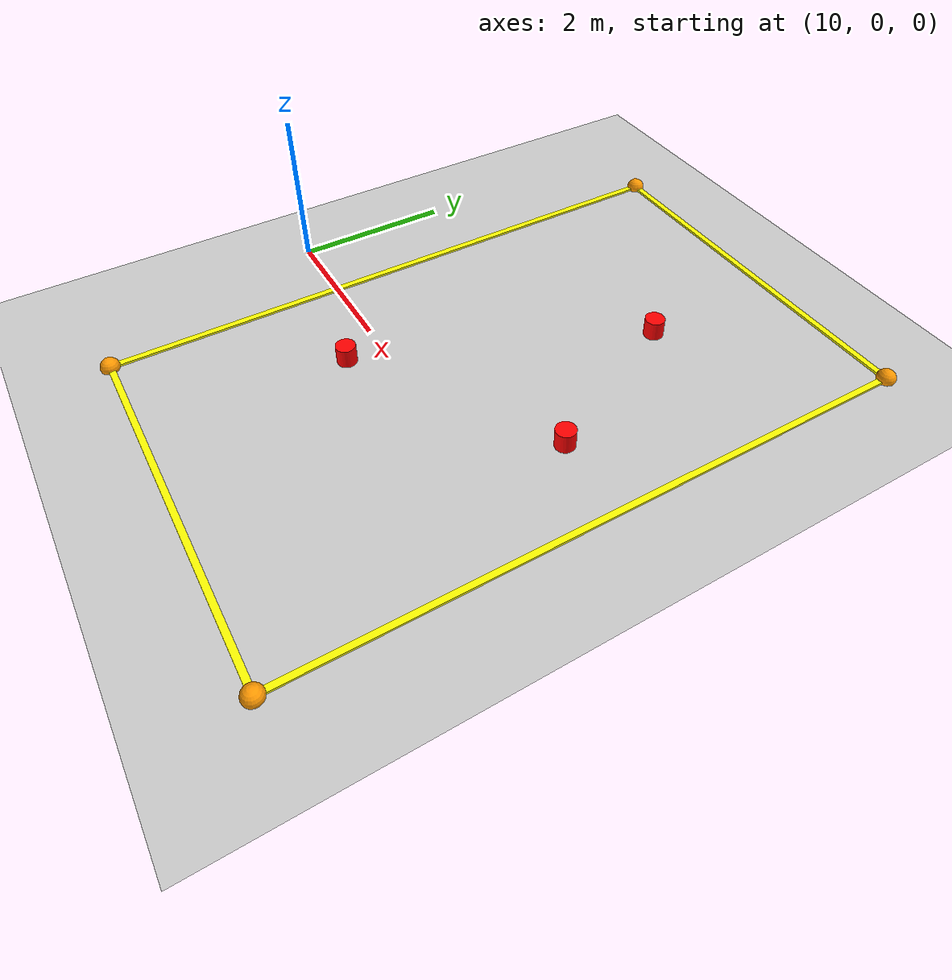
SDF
<?xml version="1.0" ?>
<sdf version="1.6">
  <world name="final">
    <plugin name="gazebo_ros_init" filename="libgazebo_ros_init.so"/>
    <plugin name="gazebo_ros_state" filename="libgazebo_ros_state.so"/>

    <include>
      <uri>model://sun</uri>
    </include>

    <include>
      <uri>model://ground_plane</uri>
    </include>

    <!-- ===== 4条边框 ===== -->
    <!-- 后端框边 (NED y=10, Gazebo x=11.01) — 8m 沿 Gazebo y -->
    <model name="border_back">
      <static>true</static>
      <pose>11.01 0.98 0.015 0 0 0</pose>
      <link name="link">
        <collision name="collision">
          <geometry><box><size>0.08 8.0 0.03</size></box></geometry>
        </collision>
        <visual name="visual">
          <geometry><box><size>0.08 8.0 0.03</size></box></geometry>
          <material>
            <ambient>1 1 0 1</ambient>
            <diffuse>1 1 0 1</diffuse>
          </material>
        </visual>
      </link>
    </model>

    <!-- 前端框边 (NED y=15, Gazebo x=16.01) — 8m 沿 Gazebo y -->
    <model name="border_front">
      <static>true</static>
      <pose>16.01 0.98 0.015 0 0 0</pose>
      <link name="link">
        <collision name="collision">
          <geometry><box><size>0.08 8.0 0.03</size></box></geometry>
        </collision>
        <visual name="visual">
          <geometry><box><size>0.08 8.0 0.03</size></box></geometry>
          <material>
            <ambient>1 1 0 1</ambient>
            <diffuse>1 1 0 1</diffuse>
          </material>
        </visual>
      </link>
    </model>

    <!-- 左框边 (NED x=-4, Gazebo y=-3.02) — 5m 沿 Gazebo x -->
    <model name="border_left">
      <static>true</static>
      <pose>13.51 -3.02 0.015 0 0 0</pose>
      <link name="link">
        <collision name="collision">
          <geometry><box><size>5.0 0.08 0.03</size></box></geometry>
        </collision>
        <visual name="visual">
          <geometry><box><size>5.0 0.08 0.03</size></box></geometry>
          <material>
            <ambient>1 1 0 1</ambient>
            <diffuse>1 1 0 1</diffuse>
          </material>
        </visual>
      </link>
    </model>

    <!-- 右框边 (NED x=+4, Gazebo y=4.98) — 5m 沿 Gazebo x -->
    <model name="border_right">
      <static>true</static>
      <pose>13.51 4.98 0.015 0 0 0</pose>
      <link name="link">
        <collision name="collision">
          <geometry><box><size>5.0 0.08 0.03</size></box></geometry>
        </collision>
        <visual name="visual">
          <geometry><box><size>5.0 0.08 0.03</size></box></geometry>
          <material>
            <ambient>1 1 0 1</ambient>
            <diffuse>1 1 0 1</diffuse>
          </material>
        </visual>
      </link>
    </model>

    <!-- ===== 4个角标 ===== -->
    <model name="corner_bl"><static>true</static><pose>11.01 -3.02 0.02 0 0 0</pose>
      <link name="link">
        <visual name="visual">
          <geometry><sphere><radius>0.12</radius></sphere></geometry>
          <material><ambient>1 0.6 0 1</ambient><diffuse>1 0.6 0 1</diffuse></material>
        </visual>
      </link>
    </model>
    <model name="corner_br"><static>true</static><pose>11.01 4.98 0.02 0 0 0</pose>
      <link name="link">
        <visual name="visual">
          <geometry><sphere><radius>0.12</radius></sphere></geometry>
          <material><ambient>1 0.6 0 1</ambient><diffuse>1 0.6 0 1</diffuse></material>
        </visual>
      </link>
    </model>
    <model name="corner_fl"><static>true</static><pose>16.01 -3.02 0.02 0 0 0</pose>
      <link name="link">
        <visual name="visual">
          <geometry><sphere><radius>0.12</radius></sphere></geometry>
          <material><ambient>1 0.6 0 1</ambient><diffuse>1 0.6 0 1</diffuse></material>
        </visual>
      </link>
    </model>
    <model name="corner_fr"><static>true</static><pose>16.01 4.98 0.02 0 0 0</pose>
      <link name="link">
        <visual name="visual">
          <geometry><sphere><radius>0.12</radius></sphere></geometry>
          <material><ambient>1 0.6 0 1</ambient><diffuse>1 0.6 0 1</diffuse></material>
        </visual>
      </link>
    </model>

    <model name="target_bucket_1">
      <pose>12.51 -0.52 0.25 0 0 0</pose>
      <link name="bucket_link">
        <inertial>
          <mass>0.5</mass>
          <inertia>
            <ixx>0.01</ixx><ixy>0</ixy><ixz>0</ixz>
            <iyy>0.01</iyy><iyz>0</iyz>
            <izz>0.01</izz>
          </inertia>
        </inertial>
        <collision name="bucket_collision">
          <geometry>
            <cylinder><radius>0.125</radius><length>0.25</length></cylinder>
          </geometry>
        </collision>
        <visual name="bucket_visual">
          <geometry>
            <cylinder><radius>0.125</radius><length>0.25</length></cylinder>
          </geometry>
          <material>
            <ambient>1 0 0 1</ambient>
            <diffuse>1 0 0 1</diffuse>
          </material>
        </visual>
      </link>
    </model>

    <model name="target_bucket_2">
      <pose>14.01 2.98 0.25 0 0 0</pose>
      <link name="bucket_link">
        <inertial>
          <mass>0.5</mass>
          <inertia>
            <ixx>0.01</ixx><ixy>0</ixy><ixz>0</ixz>
            <iyy>0.01</iyy><iyz>0</iyz>
            <izz>0.01</izz>
          </inertia>
        </inertial>
        <collision name="bucket_collision">
          <geometry>
            <cylinder><radius>0.125</radius><length>0.25</length></cylinder>
          </geometry>
        </collision>
        <visual name="bucket_visual">
          <geometry>
            <cylinder><radius>0.125</radius><length>0.25</length></cylinder>
          </geometry>
          <material>
            <ambient>1 0 0 1</ambient>
            <diffuse>1 0 0 1</diffuse>
          </material>
        </visual>
      </link>
    </model>

    <model name="target_bucket_3">
      <pose>15.01 0.98 0.25 0 0 0</pose>
      <link name="bucket_link">
        <inertial>
          <mass>0.5</mass>
          <inertia>
            <ixx>0.01</ixx><ixy>0</ixy><ixz>0</ixz>
            <iyy>0.01</iyy><iyz>0</iyz>
            <izz>0.01</izz>
          </inertia>
        </inertial>
        <collision name="bucket_collision">
          <geometry>
            <cylinder><radius>0.125</radius><length>0.25</length></cylinder>
          </geometry>
        </collision>
        <visual name="bucket_visual">
          <geometry>
            <cylinder><radius>0.125</radius><length>0.25</length></cylinder>
          </geometry>
          <material>
            <ambient>1 0 0 1</ambient>
            <diffuse>1 0 0 1</diffuse>
          </material>
        </visual>
      </link>
    </model>

  </world>
</sdf>
